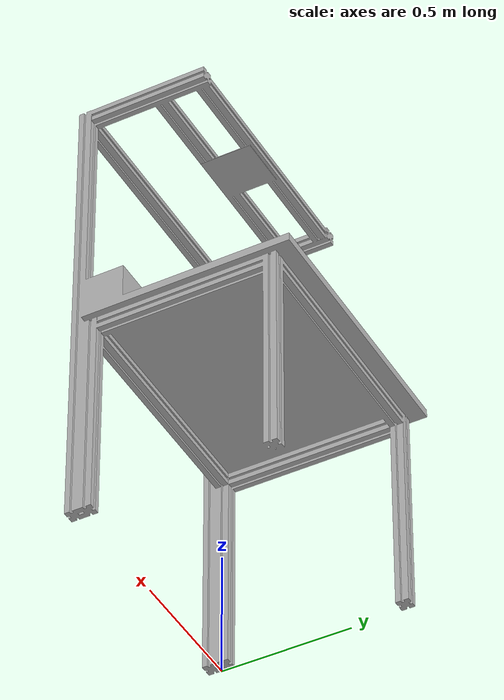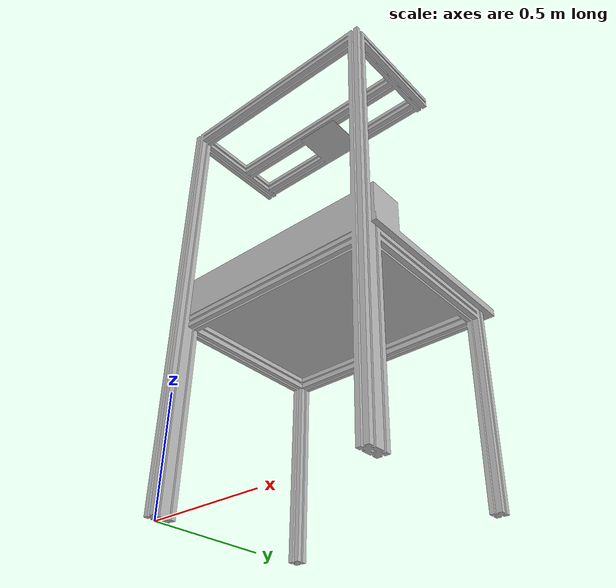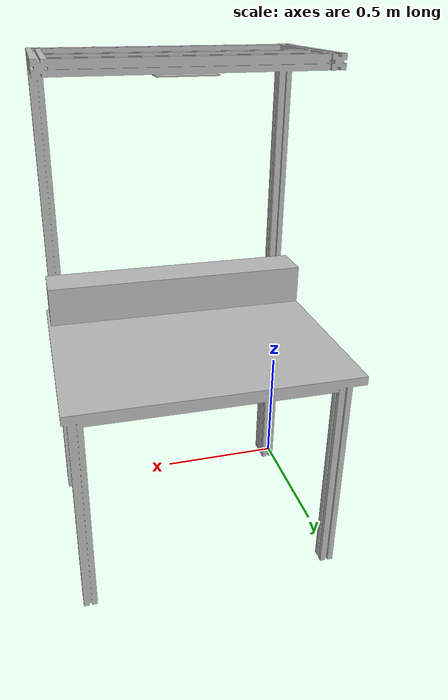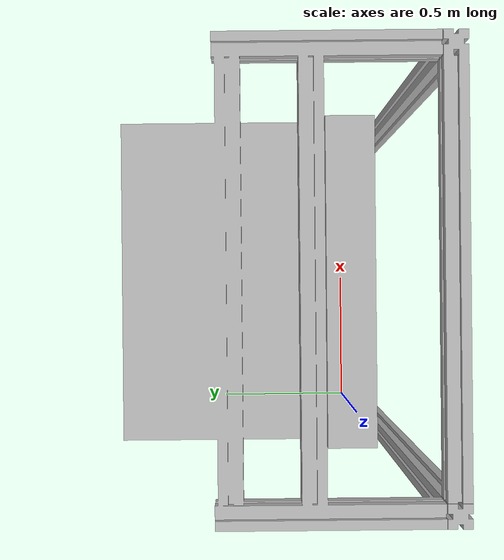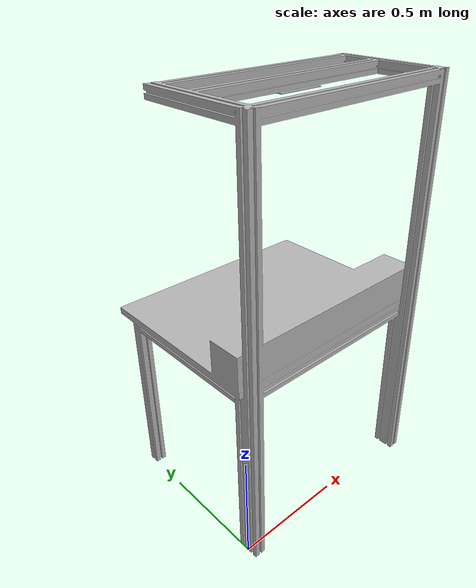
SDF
<?xml version="1.0" ?>
<sdf version="1.4">

<physics type="ode">

      <ode>

        <constraints>
          <contact_max_correcting_vel>0.1</contact_max_correcting_vel>
          <contact_surface_layer>0.0001</contact_surface_layer>
        </constraints>
      </ode>
	<max_contacts>10</max_contacts>
	</physics>

	<model name="tavolo">
	    <static>true</static>
		<link name="link">

		     <collision name="base">
			<pose>0.5 0.4 0.85 0 0 0</pose>
			<geometry>
			  <box>
			    <size>1 0.8 0.04</size>
			  </box>
			</geometry>

				<!-- see https://gazebosim.org/tutorials?tut=physics_params&cat=physics-->
				 <surface>
				  <bounce>
				    <restitution_coefficient>0.01</restitution_coefficient>
				    <threshold>5.0</threshold>
				  </bounce>
				  <friction>
				    <ode>
				      <mu>10</mu>
				      <mu2>10</mu2>
				    </ode>
				  </friction>
				  <contact>
				     <ode>
					<max_vel>0.1</max_vel>
					<min_depth>0.001</min_depth>
				        <kp>1000000.0</kp>
					<kd>1000.0</kd>
				      </ode>
			            </contact>
				</surface>

		     	</collision>

	     			<collision name="box">
				<pose>0.5 0.08 0.95 0 0 0</pose>
				<geometry>
				  <box>
				    <size>1 0.15 0.15</size>
				  </box>
				</geometry>

				 <surface>
				  <bounce>
				    <restitution_coefficient>0.01</restitution_coefficient>
				    <threshold>5.0</threshold>
				  </bounce>
				  <friction>
				    <ode>
				      <mu>10</mu>
				      <mu2>10</mu2>
				    </ode>
				  </friction>
				  <contact>
				     <ode>
					<max_vel>0.1</max_vel>
					<min_depth>0.001</min_depth>
				        <kp>1000000.0</kp>
					<kd>1000.0</kd>
				      </ode>
			            </contact>
				</surface>

			      </collision>

			   <collision name="back">
				<pose>0.5 -0.02 1.35 1.57 0 0</pose>
				<geometry>
				  <box>
				    <size>1 1.0 0.04</size>
				  </box>
				</geometry>

				 <surface>
				  <bounce>
				    <restitution_coefficient>0.01</restitution_coefficient>
				    <threshold>5.0</threshold>
				  </bounce>
				  <friction>
				    <ode>
				      <mu>10</mu>
				      <mu2>10</mu2>
				    </ode>
				  </friction>
				  <contact>
				     <ode>
					<max_vel>0.1</max_vel>
					<min_depth>0.001</min_depth>
				        <kp>1000000.0</kp>
					<kd>1000.0</kd>
				      </ode>
			            </contact>
				</surface>

			      </collision>

			<visual name="visual">
				<geometry>
					<mesh>
						<uri>model://tavolo/mesh/tavolo.stl</uri>
                                                <scale>0.001 0.001 0.001</scale>
					</mesh>
				</geometry>
			</visual>
		</link>
	</model>
</sdf>
